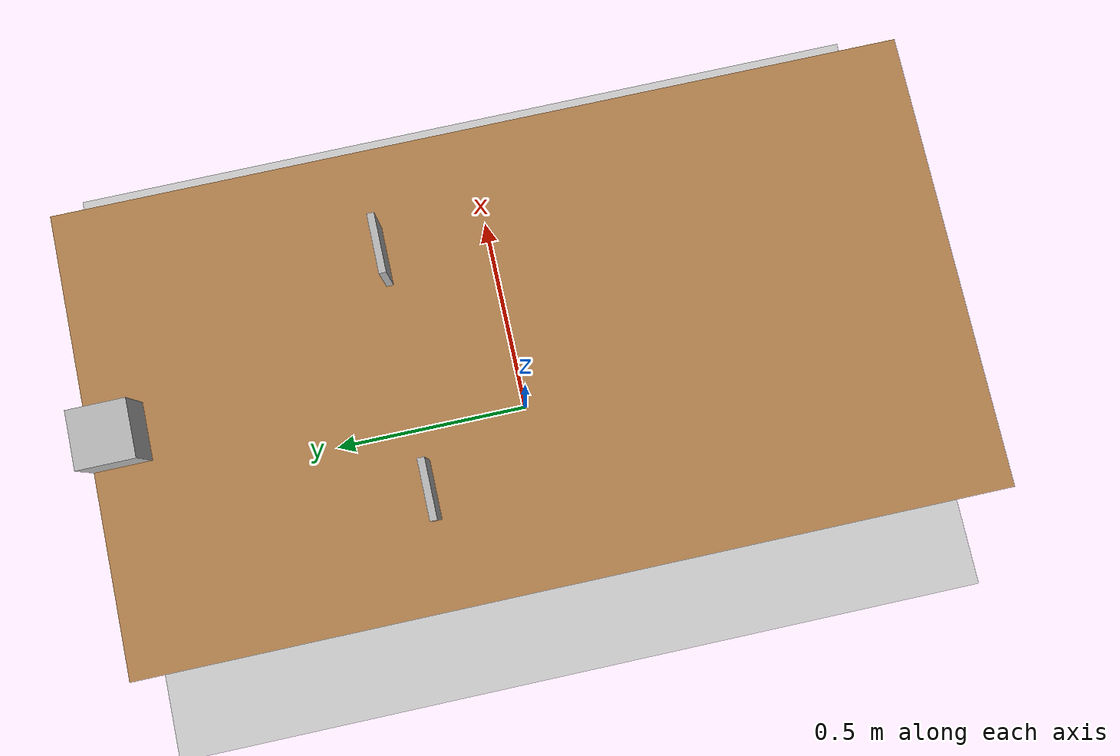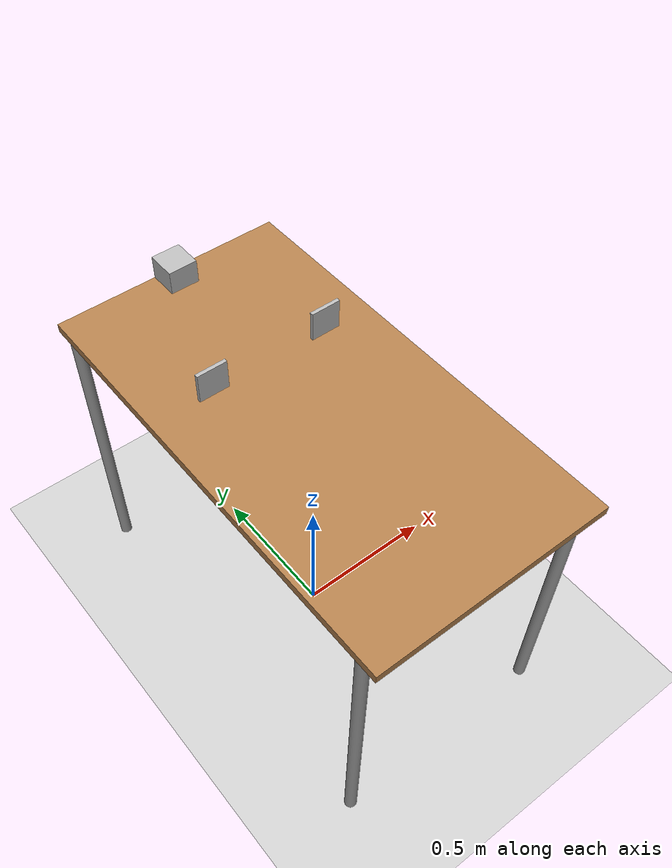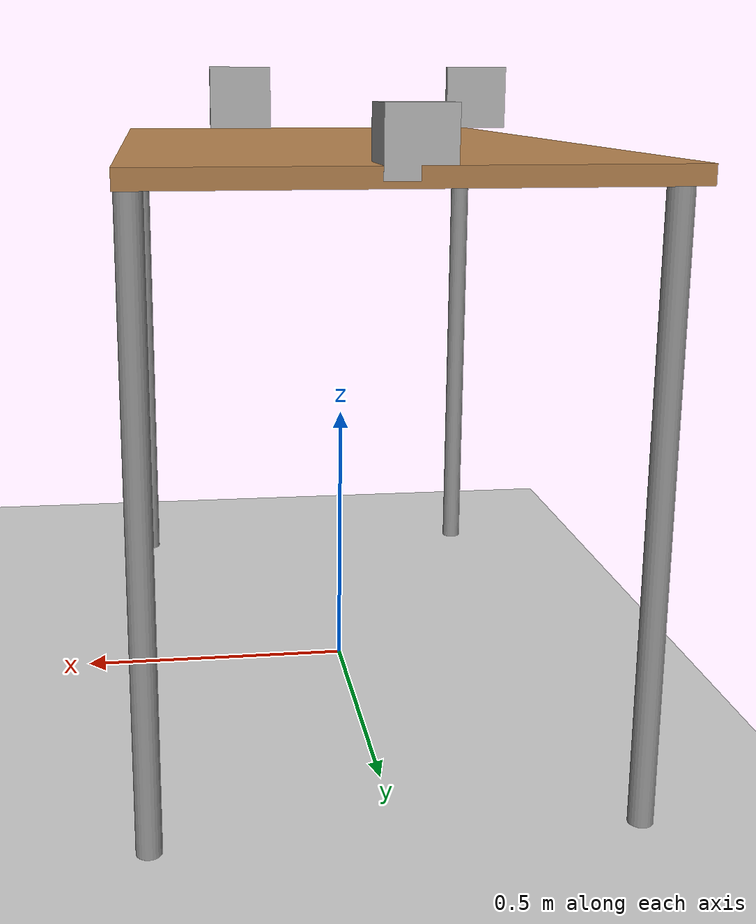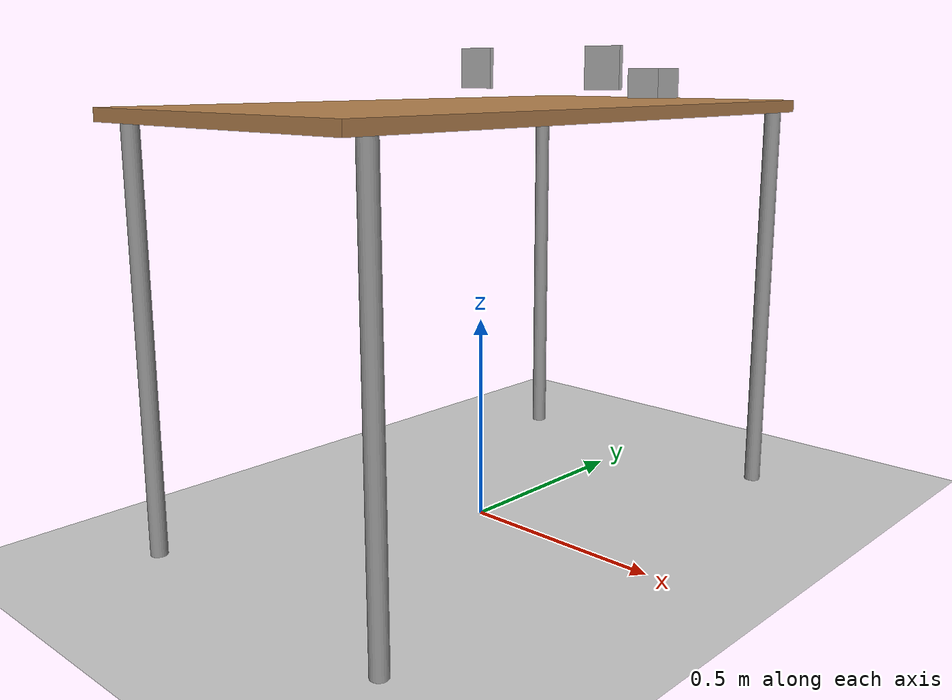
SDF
<sdf version="1.4">
 <world name="default">
  <model name="ground_plane">
   <static>1</static>
   <link name="link">
    <collision name="collision">
     <geometry><plane><normal>0 0 1</normal><size>100 100</size></plane></geometry>
     <surface>
      <contact><collide_bitmask>65535</collide_bitmask></contact>
      <friction><ode><mu>1</mu><mu2>1</mu2></ode></friction>
     </surface>
    </collision>
    <visual name="visual">
     <cast_shadows>0</cast_shadows>
     <geometry><plane><normal>0 0 1</normal><size>100 100</size></plane></geometry>
     <material>
      <script><uri>file://media/materials/scripts/gazebo.material</uri><name>Gazebo/Grey</name></script>
     </material>
    </visual>
   </link>
  </model>
  <gravity>0 0 -9.8</gravity>
  <magnetic_field>6e-06 2.3e-05 -4.2e-05</magnetic_field>
  <atmosphere type="adiabatic"/>
  <physics name="default_physics" default="0" type="ode">
   <max_step_size>0.001</max_step_size>
   <real_time_factor>1</real_time_factor>
   <real_time_update_rate>1000</real_time_update_rate>
  </physics>
  <scene><ambient>0.4 0.4 0.4 1</ambient><background>0.7 0.7 0.7 1</background><shadows>1</shadows></scene>
  <audio><device>default</device></audio>
  <spherical_coordinates>
   <surface_model>EARTH_WGS84</surface_model>
   <latitude_deg>0</latitude_deg>
   <longitude_deg>0</longitude_deg>
   <elevation>0</elevation>
   <heading_deg>0</heading_deg>
  </spherical_coordinates>
  <include><uri>model://ground_plane</uri></include>
  <include><uri>model://sun</uri></include>
  <include>
   <uri>model://table</uri>
   <name>table</name>
   <pose>0 0.0 0.0 0 0 -1.5708</pose>
   <material>
    <script><name>Gazebo/Grey</name><uri>file://media/materials/scripts/gazebo.material</uri></script>
   </material>
  </include>
  <include><uri>model://marker0</uri><name>marker0</name><pose>0.2 0.2 1.045 0 0 -1.57</pose></include>
  <include><uri>model://marker0</uri><name>marker01</name><pose>-0.2 0.2 1.045 0 0 -1.57</pose></include>
  <include><uri>model://camera</uri><name>camera</name><pose>0 0.7 1.045 0 0 -1.57</pose></include>
 </world>
</sdf>

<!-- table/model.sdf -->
<sdf version="1.5">
  <model name="table">
    <static>true</static>
    <link name="link">
      <collision name="surface">
        <pose>0 0 1.0 0 0 0</pose>
        <geometry>
          <box>
            <size>1.5 0.8 0.03</size>
          </box>
        </geometry>
        <surface>
          <friction>
            <ode>
              <mu>0.6</mu>
              <mu2>0.6</mu2>
            </ode>
          </friction>
        </surface>
      </collision>
      <visual name="visual1">
        <pose>0 0 1.0 0 0 0</pose>
        <geometry>
          <box>
            <size>1.5 0.8 0.03</size>
          </box>
        </geometry>
        <material>
          <script>
            <uri>model://media/materials/scripts/gazebo.material</uri>
            <name>Gazebo/Wood</name>
          </script>
        </material>
      </visual>
      <collision name="front_left_leg">
        <pose>0.68 0.38 0.5 0 0 0</pose>
        <geometry>
          <cylinder>
            <radius>0.02</radius>
            <length>1.0</length>
          </cylinder>
        </geometry>
      </collision>
      <visual name="front_left_leg">
        <pose>0.68 0.38 0.5 0 0 0</pose>
        <geometry>
          <cylinder>
            <radius>0.02</radius>
            <length>1.0</length>
          </cylinder>
        </geometry>
        <material>
          <script>
            <uri>model://media/materials/scripts/gazebo.material</uri>
            <name>Gazebo/Grey</name>
          </script>
        </material>
      </visual>
      <collision name="front_right_leg">
        <pose>0.68 -0.38 0.5 0 0 0</pose>
        <geometry>
          <cylinder>
            <radius>0.02</radius>
            <length>1.0</length>
          </cylinder>
        </geometry>
      </collision>
      <visual name="front_right_leg">
        <pose>0.68 -0.38 0.5 0 0 0</pose>
        <geometry>
          <cylinder>
            <radius>0.02</radius>
            <length>1.0</length>
          </cylinder>
        </geometry>
        <material>
          <script>
            <uri>model://media/materials/scripts/gazebo.material</uri>
            <name>Gazebo/Grey</name>
          </script>
        </material>
      </visual>
      <collision name="back_right_leg">
        <pose>-0.68 -0.38 0.5 0 0 0</pose>
        <geometry>
          <cylinder>
            <radius>0.02</radius>
            <length>1.0</length>
          </cylinder>
        </geometry>
      </collision>
      <visual name="back_right_leg">
        <pose>-0.68 -0.38 0.5 0 0 0</pose>
        <geometry>
          <cylinder>
            <radius>0.02</radius>
            <length>1.0</length>
          </cylinder>
        </geometry>
        <material>
          <script>
            <uri>model://media/materials/scripts/gazebo.material</uri>
            <name>Gazebo/Grey</name>
          </script>
        </material>
      </visual>
      <collision name="back_left_leg">
        <pose>-0.68 0.38 0.5 0 0 0</pose>
        <geometry>
          <cylinder>
            <radius>0.02</radius>
            <length>1.0</length>
          </cylinder>
        </geometry>
      </collision>
      <visual name="back_left_leg">
        <pose>-0.68 0.38 0.5 0 0 0</pose>
        <geometry>
          <cylinder>
            <radius>0.02</radius>
            <length>1.0</length>
          </cylinder>
        </geometry>
        <material>
          <script>
            <uri>model://media/materials/scripts/gazebo.material</uri>
            <name>Gazebo/Grey</name>
          </script>
        </material>
      </visual>
    </link>
  </model>
</sdf>

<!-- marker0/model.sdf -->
<sdf version="1.6">
  <model name="Marker0">
    <static>false</static>
    <link name="link">
      <inertial>
        <inertia>
          <ixx>0.05</ixx>
          <ixy>0</ixy>
          <ixz>0</ixz>
          <iyy>0.05</iyy>
          <iyz>0</iyz>
          <izz>0.05</izz>
        </inertia>
        <mass>0.5</mass>
      </inertial>
      <collision name="collision">
        <geometry>
          <mesh>
            <uri>model://marker0/meshes/Marker0.dae</uri>
            <scale>1.2 0.2 0.2</scale>
          </mesh>
        </geometry>
      </collision>
      <visual name="visual">
        <geometry>
          <mesh>
            <uri>model://marker0/meshes/Marker0.dae</uri>
            <scale>1.2 0.2 0.2</scale>
          </mesh>
        </geometry>
      </visual>
    </link>
  </model>
</sdf>

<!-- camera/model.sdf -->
<sdf version="1.5">
  <model name="camera">
    <pose>0 0 0.05 0 0 0</pose>
    <link name="link">
      <inertial>
        <mass>0.1</mass>
        <inertia>
          <ixx>0.000166667</ixx>
          <iyy>0.000166667</iyy>
          <izz>0.000166667</izz>
        </inertia>
      </inertial>
      <collision name="collision">
        <geometry>
          <box>
            <size>0.1 0.1 0.1</size>
          </box>
        </geometry>
      </collision>
      <visual name="visual">
        <geometry>
          <box>
            <size>0.1 0.1 0.1</size>
          </box>
        </geometry>
      </visual>
      <sensor name="camera" type="camera">
        <camera>
          <horizontal_fov>1.047</horizontal_fov>
          <image>
            <width>320</width>
            <height>240</height>
          </image>
          <clip>
            <near>0.1</near>
            <far>100</far>
          </clip>
        </camera>
        <always_on>1</always_on>
        <update_rate>30</update_rate>
        <visualize>true</visualize>
      </sensor>
    </link>
  </model>
</sdf>
